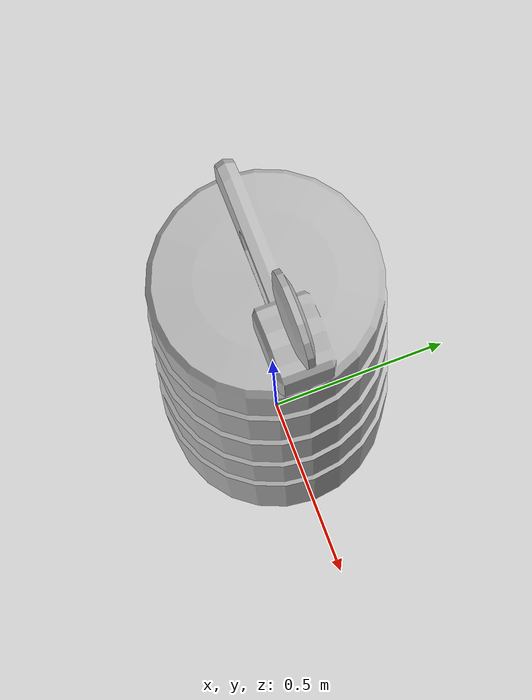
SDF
<?xml version="1.0"?>
<sdf version="1.3">
  <model name="Construction Barrel">
    <static>true</static>
    <link name="link">
      <inertial>
        <pose>0 0 0.4 0 0 0</pose>
        <mass>500</mass>
        <inertia>
          <ixx>51.2096</ixx>
          <iyy>51.2096</iyy>
          <izz>25</izz>
          <ixy>0</ixy>
          <ixz>0</ixz>
        </inertia>
      </inertial>
      <collision name="collision">
        <geometry>
          <mesh>
            <uri>model://igvc_construction_barrel/meshes/igvc_construction_barrel.dae</uri>
          </mesh>
        </geometry>
      </collision>
      <visual name="visual">
        <geometry>
          <mesh>
            <uri>model://igvc_construction_barrel/meshes/igvc_construction_barrel.dae</uri>
          </mesh>
        </geometry>
      </visual>
    </link>
  </model>
</sdf>
